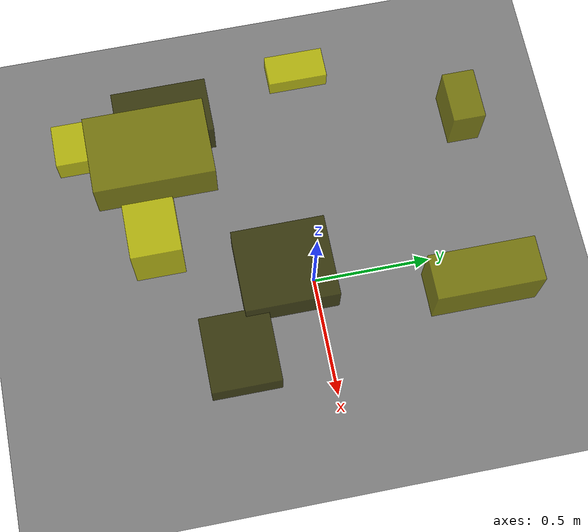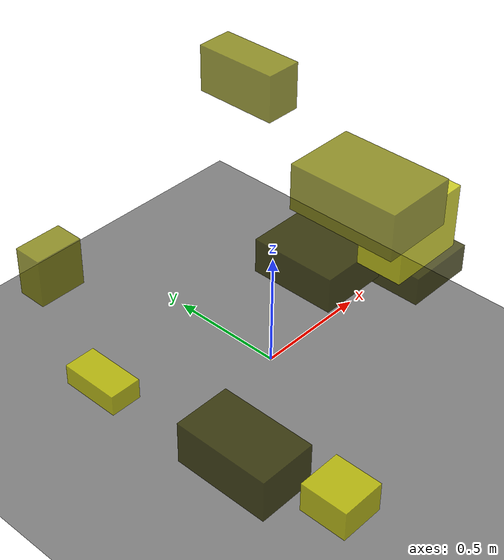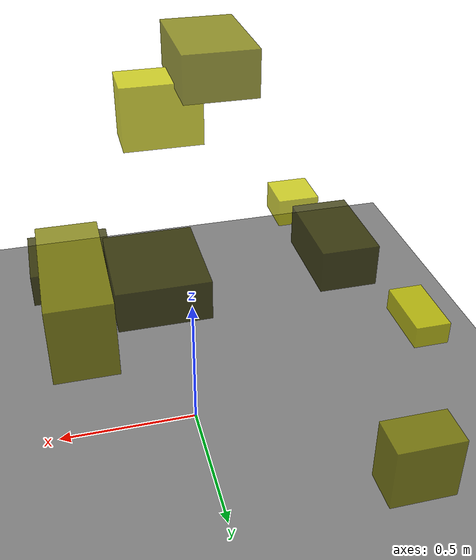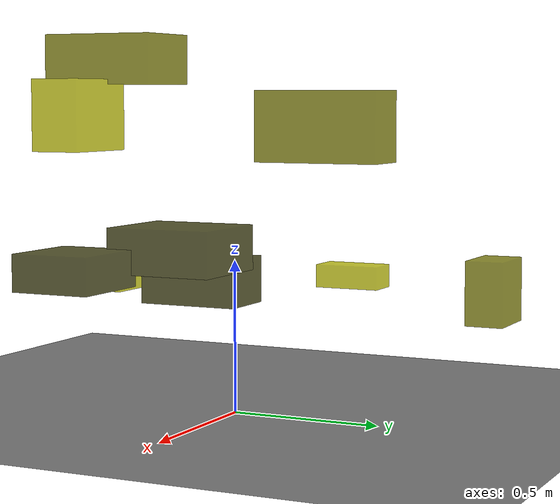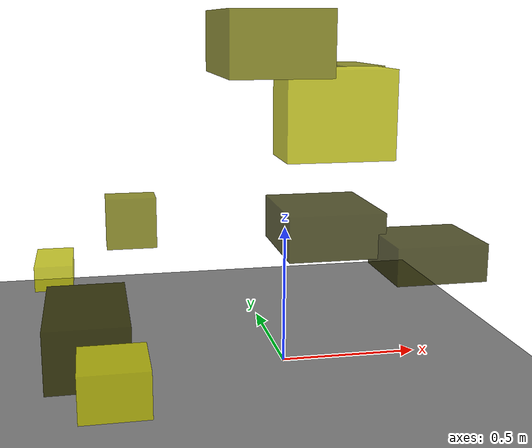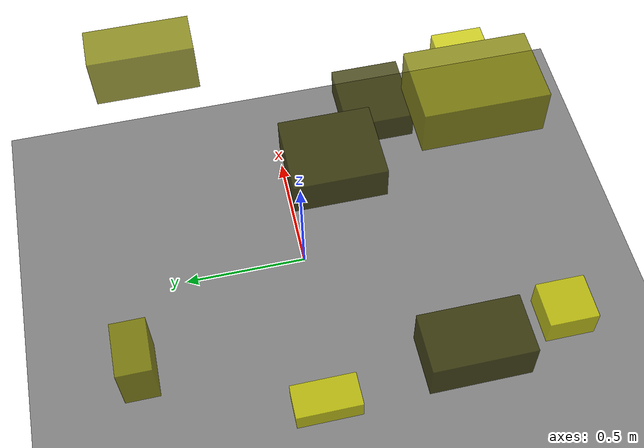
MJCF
<?xml version="1.0"?>
<mujoco model="obstacle_scene">
  <compiler angle="radian" coordinate="local"/>
  <option timestep="0.001" gravity="0 0 -9.81"/>

  <asset>
    <material name="obstacle_mat" rgba="0.8 0.8 0.0 0.8"/>
    <material name="ground_mat" rgba="0.5 0.5 0.5 1"/>
  </asset>

  <worldbody>
    <!-- Ground plane -->
    <geom name="ground" type="plane" size="3 3 0.1" material="ground_mat"/>

    <!-- Obstacles -->
    <body name="obstacle_0" pos="0.096145 -0.147548 0.538939">
      <geom name="obs_0" type="box" size="0.159146 0.180509 0.074207" rgba="0.2 0.2 0.0 0.8"/>
    </body>
    <body name="obstacle_1" pos="-0.192478 -0.560881 1.157675">
      <geom name="obs_1" type="box" size="0.135029 0.204922 0.085912" rgba="0.5 0.5 0.0 0.8"/>
    </body>
    <body name="obstacle_2" pos="-0.804575 0.074814 0.369931">
      <geom name="obs_2" type="box" size="0.063025 0.119781 0.041900" rgba="0.8 0.8 0.0 0.8"/>
    </body>
    <body name="obstacle_3" pos="0.374492 -0.372492 0.486389">
      <geom name="obs_3" type="box" size="0.145164 0.134012 0.059554" rgba="0.2 0.2 0.0 0.8"/>
    </body>
    <body name="obstacle_4" pos="0.383471 0.487872 0.944248">
      <geom name="obs_4" type="box" size="0.079341 0.187160 0.102966" rgba="0.5 0.5 0.0 0.8"/>
    </body>
    <body name="obstacle_5" pos="-0.011650 -0.601933 0.967556">
      <geom name="obs_5" type="box" size="0.149663 0.087933 0.121617" rgba="0.8 0.8 0.0 0.8"/>
    </body>
    <body name="obstacle_6" pos="-0.696673 -0.502242 0.338690">
      <geom name="obs_6" type="box" size="0.116585 0.195460 0.088788" rgba="0.2 0.2 0.0 0.8"/>
    </body>
    <body name="obstacle_7" pos="-0.508146 0.710637 0.380074">
      <geom name="obs_7" type="box" size="0.105052 0.064869 0.108343" rgba="0.5 0.5 0.0 0.8"/>
    </body>
    <body name="obstacle_8" pos="-0.634323 -0.866568 0.351937">
      <geom name="obs_8" type="box" size="0.088048 0.093396 0.060997" rgba="0.8 0.8 0.0 0.8"/>
    </body>
  </worldbody>
</mujoco>
